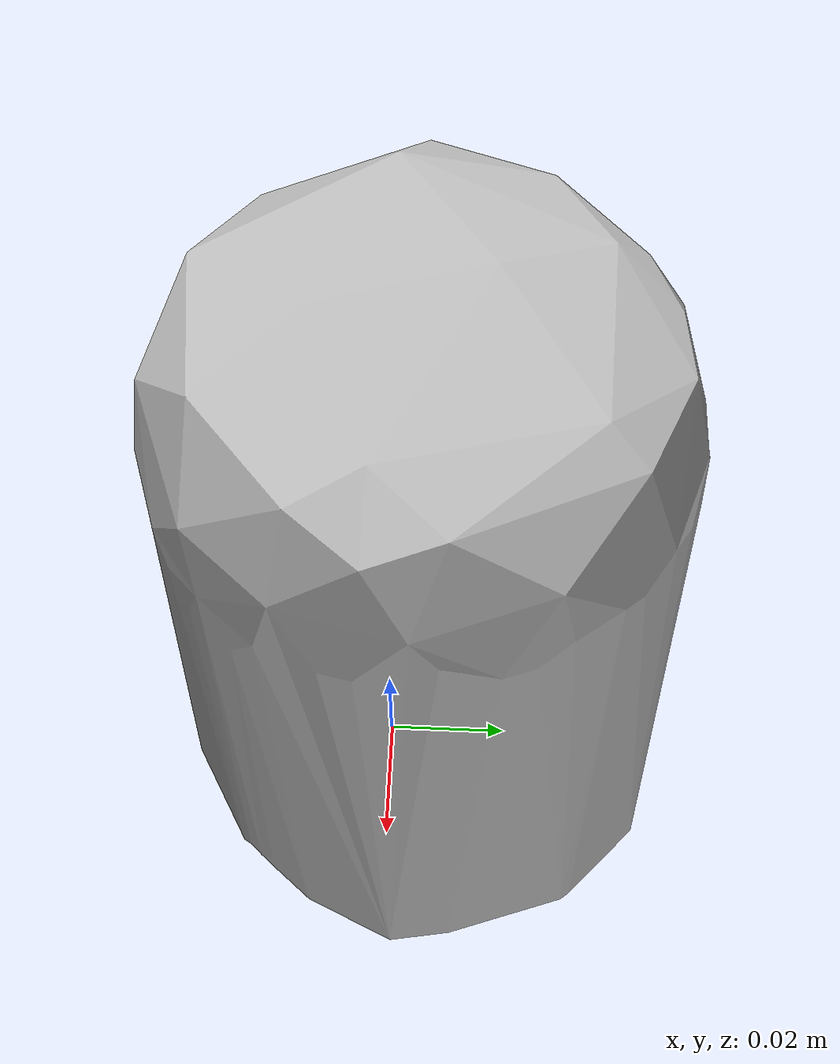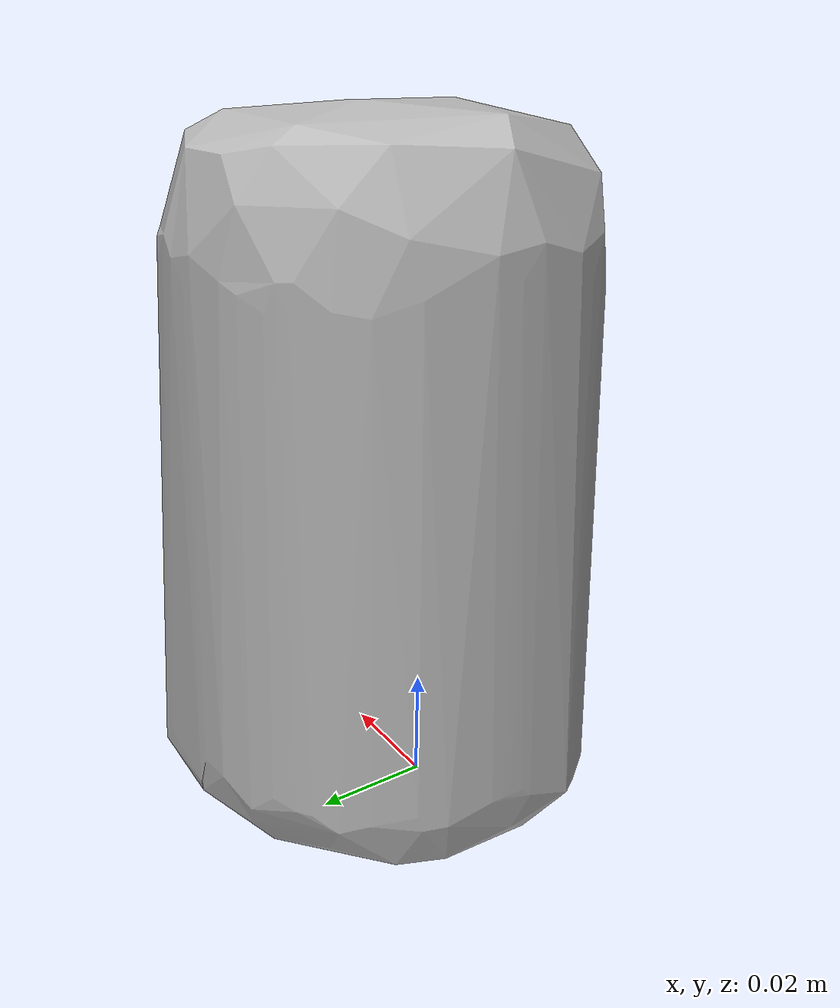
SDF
<?xml version='1.0'?>
<sdf version="1.4">
  <model name="v8_fusion_strawberry_banana">
    <static>false</static>
    <link name="link">
      <inertial>
        <pose>0.00408331003523821 0.005552669570922128 0.061012164762664876 3.1317043469385024 0.0022823012256425763 2.1693583861517873</pose>
        <mass>0.04393019921544323</mass>
        <inertia>
          <ixx>5.844787992077311e-05</ixx>
          <ixy>5.746013380051307e-21</ixy>
          <ixz>4.334317705837137e-21</ixz>
          <iyy>5.78916591594469e-05</iyy>
          <iyz>3.8331648381317594e-21</iyz>
          <izz>2.7385218269239616e-05</izz>
        </inertia>
      </inertial>
      <collision name="collision">
        <geometry>
          <mesh>
            <!-- Use a downsampled mesh for collisions -->
            <uri>model:///v8_fusion_strawberry_banana/v8_fusion_strawberry_banana_250_collision.obj</uri>
	        </mesh>
        </geometry>
        <surface>
      </surface>
      </collision>
      <visual name="visual">
        <geometry>
          <mesh>
            <uri>model:///v8_fusion_strawberry_banana/optimized_tsdf_texture_mapped_mesh.obj</uri>
	        </mesh>
        </geometry>
        <material>
          <script>
            <uri>model:///v8_fusion_strawberry_banana/v8_fusion_strawberry_banana.material</uri>
            <name>v8_fusion_strawberry_banana</name>
          </script>
        </material>
      </visual>
    </link>
  </model>
</sdf>
